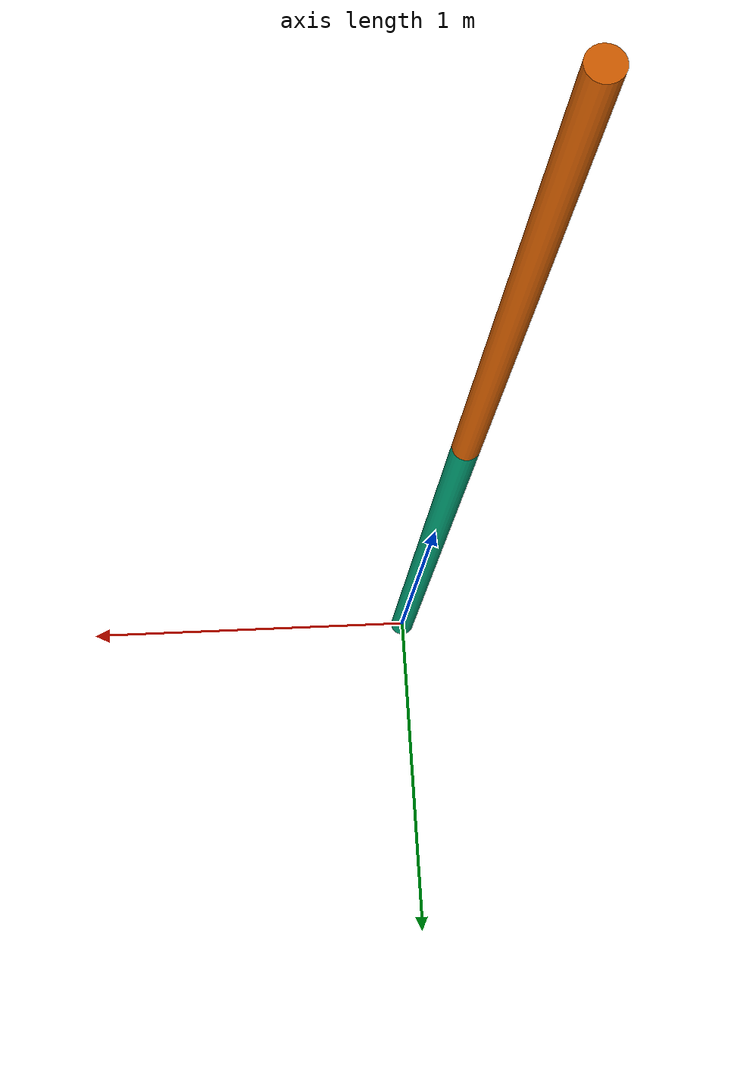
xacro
<?xml version="1.0"?>
<robot xmlns:xacro="http://www.ros.org/wiki/xacro" name="pole">
  <xacro:property name="PI" value="3.1415926535897931" />
  <xacro:property name="pole_l" value="3.3528" />
  <xacro:property name="pole_r" value="0.035" />

  <xacro:property name="cartesian_joint_effort_main" value="10000"/>
  <xacro:property name="spherical_joint_effort_main" value="10000"/>

  <xacro:property name="num_cylindrical_links" value="2" />

  <xacro:if value="${num_cylindrical_links % 2 == 0}">
    <xacro:property name="num_spherical_joints" value="${num_cylindrical_links}" />
  </xacro:if>
  <xacro:unless value="${num_cylindrical_links % 2 == 0}">
    <xacro:property name="num_spherical_joints" value="${num_cylindrical_links - 1}" />
  </xacro:unless>

  <xacro:property name="total_bend_limit" value="${PI}" />

  <xacro:property name="spherical_joint_limit" value="${total_bend_limit/(num_spherical_joints-1)}"/>
  <xacro:property name="spherical_joint_effort" value="0"/>

  <!-- Include statements for macros -->
  <xacro:include filename="cartesian_joint_macro.xacro"/>
  <xacro:include filename="spherical_joint_macro.xacro"/>
  <xacro:include filename="cylindrical_link_macro.xacro"/>

  <!-- Base link -->
  <link name="base_link"/>

  <!-- Instantiate the MAIN Cartesian Joint Macro -->
  <xacro:cartesian_joint prefix="cartesian" lower_limit="-3" upper_limit="3" effort="${cartesian_joint_effort_main}" velocity="1.5"/>

  <!-- Instantiate the MAIN Spherical Joint Macro -->
  <xacro:spherical_joint prefix="spherical" lower_limit="-${PI}" upper_limit="${PI}" effort="${spherical_joint_effort_main}" velocity="${PI/2}"/>

  <!-- Tool link is where the tip of the combined cartesian + spherical joints is at -->
  <link name="tool0"/>

  <!-- Connections between components -->

  <!-- Connect Cartesian joint system to the base -->
  <joint name="base_to_cartesian" type="fixed">
    <origin xyz="0 0 0" rpy="0 0 0"/>
    <parent link="base_link"/>
    <child link="cartesian_parent_link"/>
  </joint>

  <!-- Connect spherical joint to the top of the cartesian joint -->
  <joint name="cartesian_to_spherical" type="fixed">
    <origin xyz="0 0 0" rpy="0 0 0"/>
    <parent link="cartesian_z_link"/>
    <child link="spherical_parent_link"/>
  </joint>

  <!-- Connect the tool link with the the tip of the combined cartesian + spherical joints -->
  <joint name="spherical_to_tool0" type="fixed">
    <origin xyz="0 0 0" rpy="0 0 0"/>
    <parent link="spherical_roll_link"/>
    <child link="tool0"/>
  </joint>

  <!-- Instantiate the Cylindrical Link Macros of the LEFT side -->
  <xacro:cylindrical_link prefix="cylindrical_1" length="${pole_l/num_cylindrical_links}" diameter="${2*pole_r}" root="end2"/>

  <!-- Add fixed joint between tool0 to end2_link of cylindrical_1 -->
  <joint name="tool0_to_cylindrical_1" type="fixed">
    <origin xyz="0 0 0" rpy="0 0 0"/>
    <parent link="tool0"/>
    <child link="cylindrical_1_end2_link"/>
  </joint>

  <!-- Instantiate the Cylindrical Link Macros of the LEFT side -->
  <xacro:cylindrical_link prefix="cylindrical_2" length="${pole_l/num_cylindrical_links}" diameter="${2*pole_r}" root="end2"/>

  <!-- Add revolute joint between end1_link of cylindrical_1 to end2_link of cylindrical_2 -->
  <joint name="cylindrical_1_to_cylindrical_2" type="revolute">
    <origin xyz="0 0 0" rpy="0 0 0"/>
    <parent link="cylindrical_1_end1_link"/>
    <child link="cylindrical_2_end2_link"/>
    <axis xyz="1 0 0"/>
    <limit lower="-${spherical_joint_limit/2.0}" upper="${spherical_joint_limit/2.0}" effort="${spherical_joint_effort}" velocity="${PI/2}"/>
  </joint>

</robot>

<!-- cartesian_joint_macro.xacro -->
<robot xmlns:xacro="http://www.ros.org/wiki/xacro">
    <xacro:macro name="cartesian_joint" params="prefix lower_limit upper_limit effort velocity">
        <!-- Definition of links -->
        <link name="${prefix}_parent_link"/>
        <link name="${prefix}_x_link"/>
        <link name="${prefix}_y_link"/>
        <link name="${prefix}_z_link"/>

        <!-- Prismatic joint along X-axis -->
        <joint name="${prefix}_x_joint" type="prismatic">
            <origin xyz="0 0 0" rpy="0 0 0"/>
            <parent link="${prefix}_parent_link"/>
            <child link="${prefix}_x_link"/>
            <axis xyz="1 0 0"/>
            <limit lower="${lower_limit}" upper="${upper_limit}" effort="${effort}" velocity="${velocity}"/>
        </joint>

        <!-- Prismatic joint along Y-axis -->
        <joint name="${prefix}_y_joint" type="prismatic">
            <origin xyz="0 0 0" rpy="0 0 0"/>
            <parent link="${prefix}_x_link"/>
            <child link="${prefix}_y_link"/>
            <axis xyz="0 1 0"/>
            <limit lower="${lower_limit}" upper="${upper_limit}" effort="${effort}" velocity="${velocity}"/>
        </joint>

        <!-- Prismatic joint along Z-axis -->
        <joint name="${prefix}_z_joint" type="prismatic">
            <origin xyz="0 0 0" rpy="0 0 0"/>
            <parent link="${prefix}_y_link"/>
            <child link="${prefix}_z_link"/>
            <axis xyz="0 0 1"/>
            <limit lower="${lower_limit}" upper="${upper_limit}" effort="${effort}" velocity="${velocity}"/>
        </joint>
    </xacro:macro>
</robot>

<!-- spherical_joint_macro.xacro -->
<robot xmlns:xacro="http://www.ros.org/wiki/xacro">
    <xacro:macro name="spherical_joint" params="prefix lower_limit upper_limit effort velocity">
        <!-- Definition of links -->
        <link name="${prefix}_parent_link"/>
        <link name="${prefix}_roll_link"/>
        <link name="${prefix}_pitch_link"/>
        <link name="${prefix}_yaw_link"/>

        <!-- Revolute joint around Z-axis -->
        <joint name="${prefix}_yaw_joint" type="revolute">
            <origin xyz="0 0 0" rpy="0 0 0"/>
            <parent link="${prefix}_parent_link"/>
            <child link="${prefix}_yaw_link"/>
            <axis xyz="0 0 1"/>
            <limit lower="${lower_limit}" upper="${upper_limit}" effort="${effort}" velocity="${velocity}"/>
        </joint>

        <!-- Revolute joint around Y-axis -->
        <joint name="${prefix}_pitch_joint" type="revolute">
            <origin xyz="0 0 0" rpy="0 0 0"/>
            <parent link="${prefix}_yaw_link"/>
            <child link="${prefix}_pitch_link"/>
            <axis xyz="0 1 0"/>
            <limit lower="${lower_limit}" upper="${upper_limit}" effort="${effort}" velocity="${velocity}"/>
        </joint>

        <!-- Revolute joint around X-axis -->
        <joint name="${prefix}_roll_joint" type="revolute">
            <origin xyz="0 0 0" rpy="0 0 0"/>
            <parent link="${prefix}_pitch_link"/>
            <child link="${prefix}_roll_link"/>
            <axis xyz="1 0 0"/>
            <limit lower="${lower_limit}" upper="${upper_limit}" effort="${effort}" velocity="${velocity}"/>
        </joint>

    </xacro:macro>
</robot>

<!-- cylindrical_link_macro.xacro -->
<robot xmlns:xacro="http://www.ros.org/wiki/xacro">
    <xacro:include filename="materials.xacro"/>

    <xacro:macro name="cylindrical_link" params="prefix length diameter root='center'">
        <!-- Define the center link -->
        <xacro:if value="${root == 'center'}">
            <xacro:property name="center_origin" value="0 0 0"/>
            <xacro:property name="end1_origin" value="0 0 ${length / 2}"/>
            <xacro:property name="end2_origin" value="0 0 ${-length / 2}"/>

            <!-- Visual and collision for center link -->
            <link name="${prefix}_${root}_link">
                <visual>
                    <geometry>
                        <cylinder length="${length}" radius="${diameter / 2}"/>
                    </geometry>
                    <origin xyz="${center_origin}" rpy="0 0 0"/>
                    <material name="teal"/>
                </visual>
                <collision>
                    <geometry>
                        <cylinder length="${length}" radius="${diameter / 2}"/>
                    </geometry>
                    <origin xyz="${center_origin}" rpy="0 0 0"/>
                </collision>
            </link>
            <link name="${prefix}_end1_link"/>
            <link name="${prefix}_end2_link"/>

            <joint name="${prefix}_end1_joint" type="fixed">
                <origin xyz="${end1_origin}" rpy="0 0 0"/>
                <parent link="${prefix}_center_link"/>
                <child link="${prefix}_end1_link"/>
            </joint>

            <joint name="${prefix}_end2_joint" type="fixed">
                <origin xyz="${end2_origin}" rpy="0 0 0"/>
                <parent link="${prefix}_center_link"/>
                <child link="${prefix}_end2_link"/>
            </joint>
        </xacro:if>

        <!-- Define end1 as root -->
        <xacro:if value="${root == 'end1'}">
            <xacro:property name="center_origin" value="0 0 -${length / 2}"/>
            <xacro:property name="end1_origin" value="0 0 0"/>
            <xacro:property name="end2_origin" value="0 0 -${length}"/>

            <!-- Visual and collision for center link -->
            <link name="${prefix}_${root}_link">
                <visual>
                    <geometry>
                        <cylinder length="${length}" radius="${diameter / 2}"/>
                    </geometry>
                    <origin xyz="${center_origin}" rpy="0 0 0"/>
                    <material name="teal"/>
                </visual>
                <collision>
                    <geometry>
                        <cylinder length="${length}" radius="${diameter / 2}"/>
                    </geometry>
                    <origin xyz="${center_origin}" rpy="0 0 0"/>
                </collision>
            </link>
            <link name="${prefix}_center_link"/>
            <link name="${prefix}_end2_link"/>

            <joint name="${prefix}_center_joint" type="fixed">
                <origin xyz="${center_origin}" rpy="0 0 0"/>
                <parent link="${prefix}_end1_link"/>
                <child link="${prefix}_center_link"/>
            </joint>

            <joint name="${prefix}_end2_joint" type="fixed">
                <origin xyz="${end2_origin}" rpy="0 0 0"/>
                <parent link="${prefix}_end1_link"/>
                <child link="${prefix}_end2_link"/>
            </joint>
        </xacro:if>

        <!-- Define end2 as root -->
        <xacro:if value="${root == 'end2'}">
            <xacro:property name="center_origin" value="0 0 ${length / 2}"/>
            <xacro:property name="end1_origin" value="0 0 ${length}"/>
            <xacro:property name="end2_origin" value="0 0 0"/>

            <!-- Visual and collision for center link -->
            <link name="${prefix}_${root}_link">
                <visual>
                    <geometry>
                        <cylinder length="${length}" radius="${diameter / 2}"/>
                    </geometry>
                    <origin xyz="${center_origin}" rpy="0 0 0"/>
                    <material name="teal"/>
                </visual>
                <collision>
                    <geometry>
                        <cylinder length="${length}" radius="${diameter / 2}"/>
                    </geometry>
                    <origin xyz="${center_origin}" rpy="0 0 0"/>
                </collision>
            </link>
            <link name="${prefix}_end1_link"/>
            <link name="${prefix}_center_link"/>

            <joint name="${prefix}_center_joint" type="fixed">
                <origin xyz="${center_origin}" rpy="0 0 0"/>
                <parent link="${prefix}_end2_link"/>
                <child link="${prefix}_center_link"/>
            </joint>

            <joint name="${prefix}_end1_joint" type="fixed">
                <origin xyz="${end1_origin}" rpy="0 0 0"/>
                <parent link="${prefix}_end2_link"/>
                <child link="${prefix}_end1_link"/>
            </joint>
        </xacro:if>

    </xacro:macro>
</robot>
